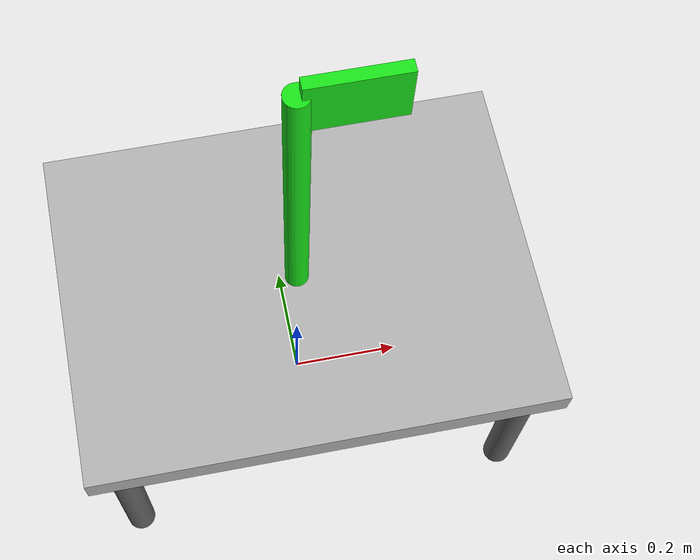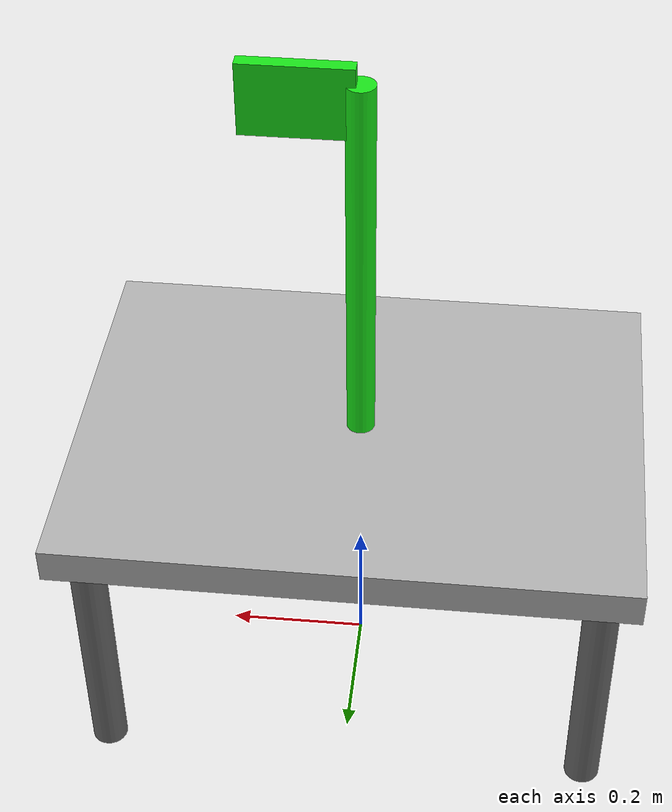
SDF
<?xml version="1.0"?>
<sdf version="1.6">
  <model name="pickup_station">
    <static>true</static>

    <!-- Table surface -->
    <link name="table">
      <pose>0 0 0.4 0 0 0</pose>
      <visual name="visual">
        <geometry><box><size>0.8 0.6 0.05</size></box></geometry>
        <material>
          <ambient>0.6 0.6 0.6 1</ambient>
          <diffuse>0.7 0.7 0.7 1</diffuse>
        </material>
      </visual>
      <collision name="collision">
        <geometry><box><size>0.8 0.6 0.05</size></box></geometry>
      </collision>
    </link>

    <!-- Table legs -->
    <link name="leg1">
      <pose>0.35 0.25 0.19 0 0 0</pose>
      <visual name="visual">
        <geometry><cylinder><radius>0.025</radius><length>0.375</length></cylinder></geometry>
        <material><diffuse>0.4 0.4 0.4 1</diffuse></material>
      </visual>
      <collision name="collision">
        <geometry><cylinder><radius>0.025</radius><length>0.375</length></cylinder></geometry>
      </collision>
    </link>

    <link name="leg2">
      <pose>-0.35 0.25 0.19 0 0 0</pose>
      <visual name="visual">
        <geometry><cylinder><radius>0.025</radius><length>0.375</length></cylinder></geometry>
        <material><diffuse>0.4 0.4 0.4 1</diffuse></material>
      </visual>
      <collision name="collision">
        <geometry><cylinder><radius>0.025</radius><length>0.375</length></cylinder></geometry>
      </collision>
    </link>

    <link name="leg3">
      <pose>0.35 -0.25 0.19 0 0 0</pose>
      <visual name="visual">
        <geometry><cylinder><radius>0.025</radius><length>0.375</length></cylinder></geometry>
        <material><diffuse>0.4 0.4 0.4 1</diffuse></material>
      </visual>
      <collision name="collision">
        <geometry><cylinder><radius>0.025</radius><length>0.375</length></cylinder></geometry>
      </collision>
    </link>

    <link name="leg4">
      <pose>-0.35 -0.25 0.19 0 0 0</pose>
      <visual name="visual">
        <geometry><cylinder><radius>0.025</radius><length>0.375</length></cylinder></geometry>
        <material><diffuse>0.4 0.4 0.4 1</diffuse></material>
      </visual>
      <collision name="collision">
        <geometry><cylinder><radius>0.025</radius><length>0.375</length></cylinder></geometry>
      </collision>
    </link>

    <!-- Green marker pole -->
    <link name="marker_pole">
      <pose>0.0 0.0 0.7 0 0 0</pose>
      <visual name="visual">
        <geometry><cylinder><radius>0.02</radius><length>0.55</length></cylinder></geometry>
        <material>
          <ambient>0.1 0.8 0.1 1</ambient>
          <diffuse>0.1 0.9 0.1 1</diffuse>
        </material>
      </visual>
    </link>

    <!-- Green marker flag -->
    <link name="marker_flag">
      <pose>0.08 0.0 0.95 0 0 0</pose>
      <visual name="visual">
        <geometry><box><size>0.15 0.02 0.1</size></box></geometry>
        <material>
          <ambient>0.1 0.8 0.1 1</ambient>
          <diffuse>0.1 0.9 0.1 1</diffuse>
        </material>
      </visual>
    </link>

  </model>
</sdf>
